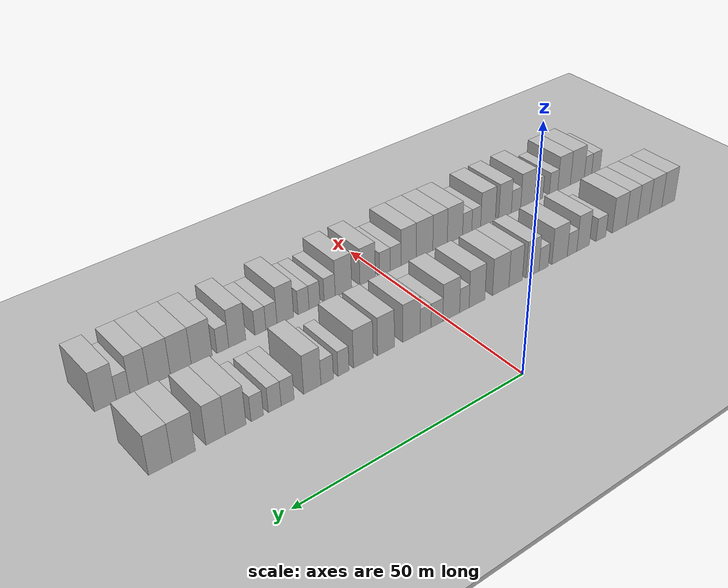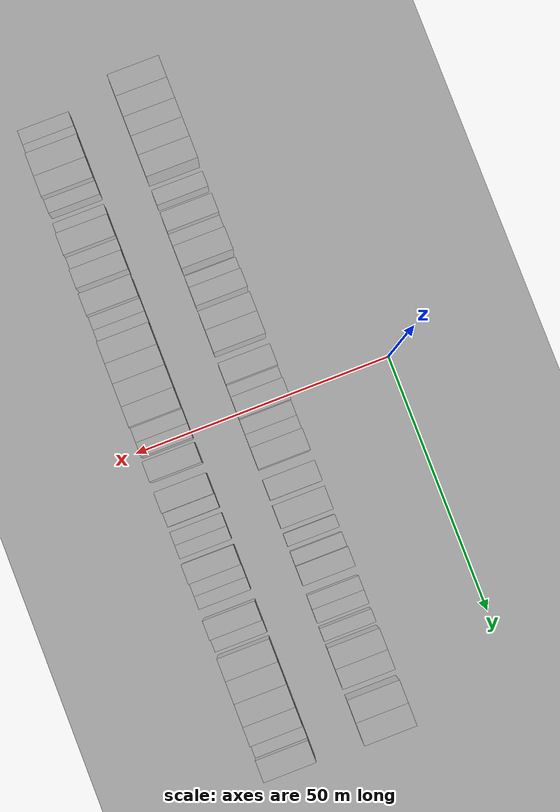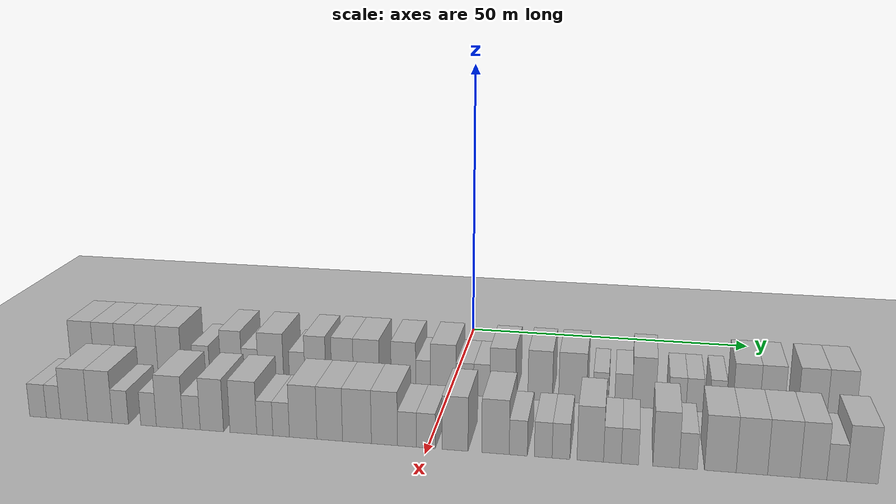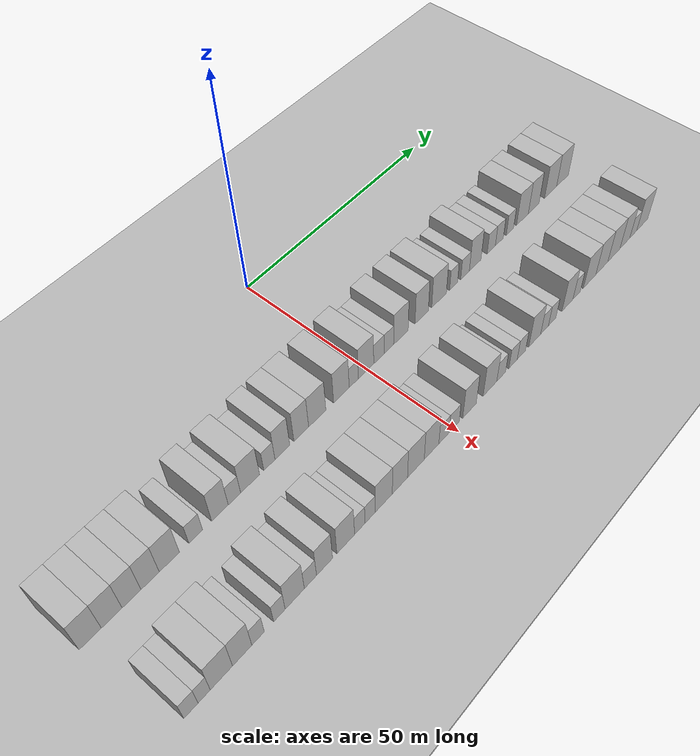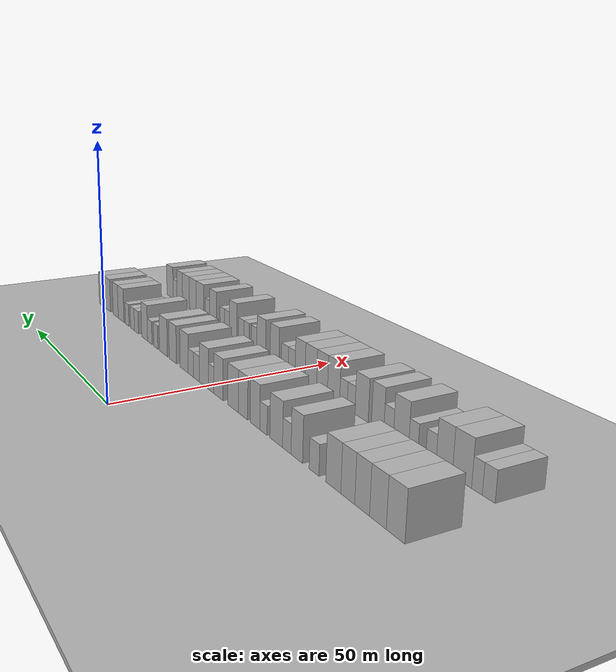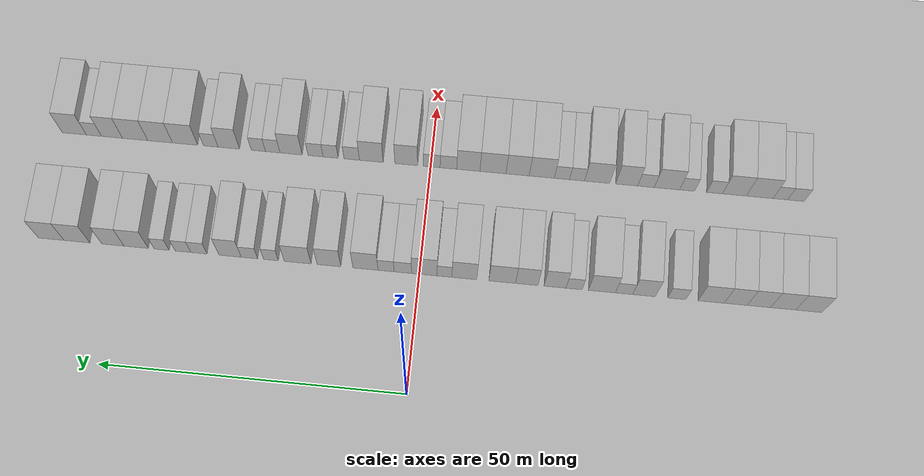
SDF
<sdf version="1.6">
 <world name="default">
  <include><name>ground_plane_1</name><uri>model://HANNAS_ground_plane</uri></include>
  <include>
   <name>ground_plane_2</name>
   <uri>model://HANNAS_ground_plane</uri>
   <pose>100 0 0  0 0 0</pose>
  </include>
  <model name="building_34">
   <static>1</static>
   <pose>25.0000 -63.6120 0 0.000000 0.000000 0.000000</pose>
   <link name="link">
    <pose>0 0 4.50 0 0 0</pose>
    <collision name="collision"><geometry><box><size>10.0000 4.2760 9.0000</size></box></geometry></collision>
    <visual name="visual">
     <cast_shadows>0</cast_shadows>
     <geometry><box><size>10.0000 4.2760 9.0000</size></box></geometry>
     <material>
      <script>
       <uri>model://HANNAS_wall/materials/scripts</uri>
       <uri>model://HANNAS_wall/materials/textures</uri>
       <name>vrc/HANNAS_wall</name>
      </script>
     </material>
    </visual>
   </link>
  </model>
  <model name="building_35">
   <static>1</static>
   <pose>25.0000 -59.4427 0 0.000000 0.000000 0.000000</pose>
   <link name="link">
    <pose>0 0 4.50 0 0 0</pose>
    <collision name="collision"><geometry><box><size>10.0000 4.0625 9.0000</size></box></geometry></collision>
    <visual name="visual">
     <cast_shadows>0</cast_shadows>
     <geometry><box><size>10.0000 4.0625 9.0000</size></box></geometry>
     <material>
      <script>
       <uri>model://HANNAS_wall/materials/scripts</uri>
       <uri>model://HANNAS_wall/materials/textures</uri>
       <name>vrc/HANNAS_wall</name>
      </script>
     </material>
    </visual>
   </link>
  </model>
  <model name="building_36">
   <static>1</static>
   <pose>25.0000 -55.5194 0 0.000000 0.000000 0.000000</pose>
   <link name="link">
    <pose>0 0 4.50 0 0 0</pose>
    <collision name="collision"><geometry><box><size>10.0000 3.7842 9.0000</size></box></geometry></collision>
    <visual name="visual">
     <cast_shadows>0</cast_shadows>
     <geometry><box><size>10.0000 3.7842 9.0000</size></box></geometry>
     <material>
      <script>
       <uri>model://HANNAS_wall/materials/scripts</uri>
       <uri>model://HANNAS_wall/materials/textures</uri>
       <name>vrc/HANNAS_wall</name>
      </script>
     </material>
    </visual>
   </link>
  </model>
  <model name="building_37">
   <static>1</static>
   <pose>25.0000 -51.7592 0 0.000000 0.000000 0.000000</pose>
   <link name="link">
    <pose>0 0 4.50 0 0 0</pose>
    <collision name="collision"><geometry><box><size>10.0000 3.7362 9.0000</size></box></geometry></collision>
    <visual name="visual">
     <cast_shadows>0</cast_shadows>
     <geometry><box><size>10.0000 3.7362 9.0000</size></box></geometry>
     <material>
      <script>
       <uri>model://HANNAS_wall/materials/scripts</uri>
       <uri>model://HANNAS_wall/materials/textures</uri>
       <name>vrc/HANNAS_wall</name>
      </script>
     </material>
    </visual>
   </link>
  </model>
  <model name="building_38">
   <static>1</static>
   <pose>25.0000 -47.7667 0 0.000000 0.000000 0.000000</pose>
   <link name="link">
    <pose>0 0 4.50 0 0 0</pose>
    <collision name="collision"><geometry><box><size>10.0000 4.2488 9.0000</size></box></geometry></collision>
    <visual name="visual">
     <cast_shadows>0</cast_shadows>
     <geometry><box><size>10.0000 4.2488 9.0000</size></box></geometry>
     <material>
      <script>
       <uri>model://HANNAS_wall/materials/scripts</uri>
       <uri>model://HANNAS_wall/materials/textures</uri>
       <name>vrc/HANNAS_wall</name>
      </script>
     </material>
    </visual>
   </link>
  </model>
  <model name="building_39">
   <static>1</static>
   <pose>25.0000 -42.1554 0 0.000000 0.000000 0.000000</pose>
   <link name="link">
    <pose>0 0 3.00 0 0 0</pose>
    <collision name="collision"><geometry><box><size>10.0000 2.9738 6.0000</size></box></geometry></collision>
    <visual name="visual">
     <cast_shadows>0</cast_shadows>
     <geometry><box><size>10.0000 2.9738 6.0000</size></box></geometry>
     <material>
      <script>
       <uri>model://HANNAS_wall/materials/scripts</uri>
       <uri>model://HANNAS_wall/materials/textures</uri>
       <name>vrc/HANNAS_wall</name>
      </script>
     </material>
    </visual>
   </link>
  </model>
  <model name="building_40">
   <static>1</static>
   <pose>25.0000 -36.8088 0 0.000000 0.000000 0.000000</pose>
   <link name="link">
    <pose>0 0 4.50 0 0 0</pose>
    <collision name="collision"><geometry><box><size>10.0000 3.7194 9.0000</size></box></geometry></collision>
    <visual name="visual">
     <cast_shadows>0</cast_shadows>
     <geometry><box><size>10.0000 3.7194 9.0000</size></box></geometry>
     <material>
      <script>
       <uri>model://HANNAS_wall/materials/scripts</uri>
       <uri>model://HANNAS_wall/materials/textures</uri>
       <name>vrc/HANNAS_wall</name>
      </script>
     </material>
    </visual>
   </link>
  </model>
  <model name="building_41">
   <static>1</static>
   <pose>25.0000 -33.5397 0 0.000000 0.000000 0.000000</pose>
   <link name="link">
    <pose>0 0 3.00 0 0 0</pose>
    <collision name="collision"><geometry><box><size>10.0000 2.8187 6.0000</size></box></geometry></collision>
    <visual name="visual">
     <cast_shadows>0</cast_shadows>
     <geometry><box><size>10.0000 2.8187 6.0000</size></box></geometry>
     <material>
      <script>
       <uri>model://HANNAS_wall/materials/scripts</uri>
       <uri>model://HANNAS_wall/materials/textures</uri>
       <name>vrc/HANNAS_wall</name>
      </script>
     </material>
    </visual>
   </link>
  </model>
  <model name="building_42">
   <static>1</static>
   <pose>25.0000 -29.9237 0 0.000000 0.000000 0.000000</pose>
   <link name="link">
    <pose>0 0 4.50 0 0 0</pose>
    <collision name="collision"><geometry><box><size>10.0000 4.4133 9.0000</size></box></geometry></collision>
    <visual name="visual">
     <cast_shadows>0</cast_shadows>
     <geometry><box><size>10.0000 4.4133 9.0000</size></box></geometry>
     <material>
      <script>
       <uri>model://HANNAS_wall/materials/scripts</uri>
       <uri>model://HANNAS_wall/materials/textures</uri>
       <name>vrc/HANNAS_wall</name>
      </script>
     </material>
    </visual>
   </link>
  </model>
  <model name="building_43">
   <static>1</static>
   <pose>25.0000 -25.3851 0 0.000000 0.000000 0.000000</pose>
   <link name="link">
    <pose>0 0 3.00 0 0 0</pose>
    <collision name="collision"><geometry><box><size>10.0000 2.6640 6.0000</size></box></geometry></collision>
    <visual name="visual">
     <cast_shadows>0</cast_shadows>
     <geometry><box><size>10.0000 2.6640 6.0000</size></box></geometry>
     <material>
      <script>
       <uri>model://HANNAS_wall/materials/scripts</uri>
       <uri>model://HANNAS_wall/materials/textures</uri>
       <name>vrc/HANNAS_wall</name>
      </script>
     </material>
    </visual>
   </link>
  </model>
  <model name="building_44">
   <static>1</static>
   <pose>25.0000 -22.2529 0 0.000000 0.000000 0.000000</pose>
   <link name="link">
    <pose>0 0 4.50 0 0 0</pose>
    <collision name="collision"><geometry><box><size>10.0000 3.6002 9.0000</size></box></geometry></collision>
    <visual name="visual">
     <cast_shadows>0</cast_shadows>
     <geometry><box><size>10.0000 3.6002 9.0000</size></box></geometry>
     <material>
      <script>
       <uri>model://HANNAS_wall/materials/scripts</uri>
       <uri>model://HANNAS_wall/materials/textures</uri>
       <name>vrc/HANNAS_wall</name>
      </script>
     </material>
    </visual>
   </link>
  </model>
  <model name="building_45">
   <static>1</static>
   <pose>25.0000 -17.6138 0 0.000000 0.000000 0.000000</pose>
   <link name="link">
    <pose>0 0 4.50 0 0 0</pose>
    <collision name="collision"><geometry><box><size>10.0000 3.6782 9.0000</size></box></geometry></collision>
    <visual name="visual">
     <cast_shadows>0</cast_shadows>
     <geometry><box><size>10.0000 3.6782 9.0000</size></box></geometry>
     <material>
      <script>
       <uri>model://HANNAS_wall/materials/scripts</uri>
       <uri>model://HANNAS_wall/materials/textures</uri>
       <name>vrc/HANNAS_wall</name>
      </script>
     </material>
    </visual>
   </link>
  </model>
  <model name="building_46">
   <static>1</static>
   <pose>25.0000 -13.5874 0 0.000000 0.000000 0.000000</pose>
   <link name="link">
    <pose>0 0 4.50 0 0 0</pose>
    <collision name="collision"><geometry><box><size>10.0000 4.3746 9.0000</size></box></geometry></collision>
    <visual name="visual">
     <cast_shadows>0</cast_shadows>
     <geometry><box><size>10.0000 4.3746 9.0000</size></box></geometry>
     <material>
      <script>
       <uri>model://HANNAS_wall/materials/scripts</uri>
       <uri>model://HANNAS_wall/materials/textures</uri>
       <name>vrc/HANNAS_wall</name>
      </script>
     </material>
    </visual>
   </link>
  </model>
  <model name="building_47">
   <static>1</static>
   <pose>25.0000 -7.3509 0 0.000000 0.000000 0.000000</pose>
   <link name="link">
    <pose>0 0 4.50 0 0 0</pose>
    <collision name="collision"><geometry><box><size>10.0000 4.0982 9.0000</size></box></geometry></collision>
    <visual name="visual">
     <cast_shadows>0</cast_shadows>
     <geometry><box><size>10.0000 4.0982 9.0000</size></box></geometry>
     <material>
      <script>
       <uri>model://HANNAS_wall/materials/scripts</uri>
       <uri>model://HANNAS_wall/materials/textures</uri>
       <name>vrc/HANNAS_wall</name>
      </script>
     </material>
    </visual>
   </link>
  </model>
  <model name="building_48">
   <static>1</static>
   <pose>25.0000 -4.0877 0 0.000000 0.000000 0.000000</pose>
   <link name="link">
    <pose>0 0 3.00 0 0 0</pose>
    <collision name="collision"><geometry><box><size>10.0000 2.4283 6.0000</size></box></geometry></collision>
    <visual name="visual">
     <cast_shadows>0</cast_shadows>
     <geometry><box><size>10.0000 2.4283 6.0000</size></box></geometry>
     <material>
      <script>
       <uri>model://HANNAS_wall/materials/scripts</uri>
       <uri>model://HANNAS_wall/materials/textures</uri>
       <name>vrc/HANNAS_wall</name>
      </script>
     </material>
    </visual>
   </link>
  </model>
  <model name="building_49">
   <static>1</static>
   <pose>25.0000 -0.7692 0 0.000000 0.000000 0.000000</pose>
   <link name="link">
    <pose>0 0 4.50 0 0 0</pose>
    <collision name="collision"><geometry><box><size>10.0000 4.2088 9.0000</size></box></geometry></collision>
    <visual name="visual">
     <cast_shadows>0</cast_shadows>
     <geometry><box><size>10.0000 4.2088 9.0000</size></box></geometry>
     <material>
      <script>
       <uri>model://HANNAS_wall/materials/scripts</uri>
       <uri>model://HANNAS_wall/materials/textures</uri>
       <name>vrc/HANNAS_wall</name>
      </script>
     </material>
    </visual>
   </link>
  </model>
  <model name="building_50">
   <static>1</static>
   <pose>25.0000 2.7833 0 0.000000 0.000000 0.000000</pose>
   <link name="link">
    <pose>0 0 3.00 0 0 0</pose>
    <collision name="collision"><geometry><box><size>10.0000 2.8960 6.0000</size></box></geometry></collision>
    <visual name="visual">
     <cast_shadows>0</cast_shadows>
     <geometry><box><size>10.0000 2.8960 6.0000</size></box></geometry>
     <material>
      <script>
       <uri>model://HANNAS_wall/materials/scripts</uri>
       <uri>model://HANNAS_wall/materials/textures</uri>
       <name>vrc/HANNAS_wall</name>
      </script>
     </material>
    </visual>
   </link>
  </model>
  <model name="building_51">
   <static>1</static>
   <pose>25.0000 5.5601 0 0.000000 0.000000 0.000000</pose>
   <link name="link">
    <pose>0 0 3.00 0 0 0</pose>
    <collision name="collision"><geometry><box><size>10.0000 2.6575 6.0000</size></box></geometry></collision>
    <visual name="visual">
     <cast_shadows>0</cast_shadows>
     <geometry><box><size>10.0000 2.6575 6.0000</size></box></geometry>
     <material>
      <script>
       <uri>model://HANNAS_wall/materials/scripts</uri>
       <uri>model://HANNAS_wall/materials/textures</uri>
       <name>vrc/HANNAS_wall</name>
      </script>
     </material>
    </visual>
   </link>
  </model>
  <model name="building_52">
   <static>1</static>
   <pose>25.0000 8.9630 0 0.000000 0.000000 0.000000</pose>
   <link name="link">
    <pose>0 0 4.50 0 0 0</pose>
    <collision name="collision"><geometry><box><size>10.0000 4.1483 9.0000</size></box></geometry></collision>
    <visual name="visual">
     <cast_shadows>0</cast_shadows>
     <geometry><box><size>10.0000 4.1483 9.0000</size></box></geometry>
     <material>
      <script>
       <uri>model://HANNAS_wall/materials/scripts</uri>
       <uri>model://HANNAS_wall/materials/textures</uri>
       <name>vrc/HANNAS_wall</name>
      </script>
     </material>
    </visual>
   </link>
  </model>
  <model name="building_53">
   <static>1</static>
   <pose>25.0000 15.0030 0 0.000000 0.000000 0.000000</pose>
   <link name="link">
    <pose>0 0 4.50 0 0 0</pose>
    <collision name="collision"><geometry><box><size>10.0000 3.9316 9.0000</size></box></geometry></collision>
    <visual name="visual">
     <cast_shadows>0</cast_shadows>
     <geometry><box><size>10.0000 3.9316 9.0000</size></box></geometry>
     <material>
      <script>
       <uri>model://HANNAS_wall/materials/scripts</uri>
       <uri>model://HANNAS_wall/materials/textures</uri>
       <name>vrc/HANNAS_wall</name>
      </script>
     </material>
    </visual>
   </link>
  </model>
  <model name="building_54">
   <static>1</static>
   <pose>25.0000 20.1888 0 0.000000 0.000000 0.000000</pose>
   <link name="link">
    <pose>0 0 4.50 0 0 0</pose>
    <collision name="collision"><geometry><box><size>10.0000 4.4401 9.0000</size></box></geometry></collision>
    <visual name="visual">
     <cast_shadows>0</cast_shadows>
     <geometry><box><size>10.0000 4.4401 9.0000</size></box></geometry>
     <material>
      <script>
       <uri>model://HANNAS_wall/materials/scripts</uri>
       <uri>model://HANNAS_wall/materials/textures</uri>
       <name>vrc/HANNAS_wall</name>
      </script>
     </material>
    </visual>
   </link>
  </model>
  <model name="building_55">
   <static>1</static>
   <pose>25.0000 24.6258 0 0.000000 0.000000 0.000000</pose>
   <link name="link">
    <pose>0 0 3.00 0 0 0</pose>
    <collision name="collision"><geometry><box><size>10.0000 2.4338 6.0000</size></box></geometry></collision>
    <visual name="visual">
     <cast_shadows>0</cast_shadows>
     <geometry><box><size>10.0000 2.4338 6.0000</size></box></geometry>
     <material>
      <script>
       <uri>model://HANNAS_wall/materials/scripts</uri>
       <uri>model://HANNAS_wall/materials/textures</uri>
       <name>vrc/HANNAS_wall</name>
      </script>
     </material>
    </visual>
   </link>
  </model>
  <model name="building_56">
   <static>1</static>
   <pose>25.0000 28.2052 0 0.000000 0.000000 0.000000</pose>
   <link name="link">
    <pose>0 0 3.00 0 0 0</pose>
    <collision name="collision"><geometry><box><size>10.0000 2.7251 6.0000</size></box></geometry></collision>
    <visual name="visual">
     <cast_shadows>0</cast_shadows>
     <geometry><box><size>10.0000 2.7251 6.0000</size></box></geometry>
     <material>
      <script>
       <uri>model://HANNAS_wall/materials/scripts</uri>
       <uri>model://HANNAS_wall/materials/textures</uri>
       <name>vrc/HANNAS_wall</name>
      </script>
     </material>
    </visual>
   </link>
  </model>
  <model name="building_57">
   <static>1</static>
   <pose>25.0000 31.4204 0 0.000000 0.000000 0.000000</pose>
   <link name="link">
    <pose>0 0 4.50 0 0 0</pose>
    <collision name="collision"><geometry><box><size>10.0000 3.7054 9.0000</size></box></geometry></collision>
    <visual name="visual">
     <cast_shadows>0</cast_shadows>
     <geometry><box><size>10.0000 3.7054 9.0000</size></box></geometry>
     <material>
      <script>
       <uri>model://HANNAS_wall/materials/scripts</uri>
       <uri>model://HANNAS_wall/materials/textures</uri>
       <name>vrc/HANNAS_wall</name>
      </script>
     </material>
    </visual>
   </link>
  </model>
  <model name="building_58">
   <static>1</static>
   <pose>25.0000 36.6185 0 0.000000 0.000000 0.000000</pose>
   <link name="link">
    <pose>0 0 3.00 0 0 0</pose>
    <collision name="collision"><geometry><box><size>10.0000 2.6908 6.0000</size></box></geometry></collision>
    <visual name="visual">
     <cast_shadows>0</cast_shadows>
     <geometry><box><size>10.0000 2.6908 6.0000</size></box></geometry>
     <material>
      <script>
       <uri>model://HANNAS_wall/materials/scripts</uri>
       <uri>model://HANNAS_wall/materials/textures</uri>
       <name>vrc/HANNAS_wall</name>
      </script>
     </material>
    </visual>
   </link>
  </model>
  <model name="building_59">
   <static>1</static>
   <pose>25.0000 39.2777 0 0.000000 0.000000 0.000000</pose>
   <link name="link">
    <pose>0 0 3.00 0 0 0</pose>
    <collision name="collision"><geometry><box><size>10.0000 2.6276 6.0000</size></box></geometry></collision>
    <visual name="visual">
     <cast_shadows>0</cast_shadows>
     <geometry><box><size>10.0000 2.6276 6.0000</size></box></geometry>
     <material>
      <script>
       <uri>model://HANNAS_wall/materials/scripts</uri>
       <uri>model://HANNAS_wall/materials/textures</uri>
       <name>vrc/HANNAS_wall</name>
      </script>
     </material>
    </visual>
   </link>
  </model>
  <model name="building_60">
   <static>1</static>
   <pose>25.0000 42.8340 0 0.000000 0.000000 0.000000</pose>
   <link name="link">
    <pose>0 0 3.00 0 0 0</pose>
    <collision name="collision"><geometry><box><size>10.0000 2.4851 6.0000</size></box></geometry></collision>
    <visual name="visual">
     <cast_shadows>0</cast_shadows>
     <geometry><box><size>10.0000 2.4851 6.0000</size></box></geometry>
     <material>
      <script>
       <uri>model://HANNAS_wall/materials/scripts</uri>
       <uri>model://HANNAS_wall/materials/textures</uri>
       <name>vrc/HANNAS_wall</name>
      </script>
     </material>
    </visual>
   </link>
  </model>
  <model name="building_61">
   <static>1</static>
   <pose>25.0000 47.1062 0 0.000000 0.000000 0.000000</pose>
   <link name="link">
    <pose>0 0 4.50 0 0 0</pose>
    <collision name="collision"><geometry><box><size>10.0000 4.0592 9.0000</size></box></geometry></collision>
    <visual name="visual">
     <cast_shadows>0</cast_shadows>
     <geometry><box><size>10.0000 4.0592 9.0000</size></box></geometry>
     <material>
      <script>
       <uri>model://HANNAS_wall/materials/scripts</uri>
       <uri>model://HANNAS_wall/materials/textures</uri>
       <name>vrc/HANNAS_wall</name>
      </script>
     </material>
    </visual>
   </link>
  </model>
  <model name="building_62">
   <static>1</static>
   <pose>25.0000 51.0010 0 0.000000 0.000000 0.000000</pose>
   <link name="link">
    <pose>0 0 4.50 0 0 0</pose>
    <collision name="collision"><geometry><box><size>10.0000 3.7304 9.0000</size></box></geometry></collision>
    <visual name="visual">
     <cast_shadows>0</cast_shadows>
     <geometry><box><size>10.0000 3.7304 9.0000</size></box></geometry>
     <material>
      <script>
       <uri>model://HANNAS_wall/materials/scripts</uri>
       <uri>model://HANNAS_wall/materials/textures</uri>
       <name>vrc/HANNAS_wall</name>
      </script>
     </material>
    </visual>
   </link>
  </model>
  <model name="building_63">
   <static>1</static>
   <pose>25.0000 57.0351 0 0.000000 0.000000 0.000000</pose>
   <link name="link">
    <pose>0 0 4.50 0 0 0</pose>
    <collision name="collision"><geometry><box><size>10.0000 4.3378 9.0000</size></box></geometry></collision>
    <visual name="visual">
     <cast_shadows>0</cast_shadows>
     <geometry><box><size>10.0000 4.3378 9.0000</size></box></geometry>
     <material>
      <script>
       <uri>model://HANNAS_wall/materials/scripts</uri>
       <uri>model://HANNAS_wall/materials/textures</uri>
       <name>vrc/HANNAS_wall</name>
      </script>
     </material>
    </visual>
   </link>
  </model>
  <model name="building_64">
   <static>1</static>
   <pose>25.0000 61.3493 0 0.000000 0.000000 0.000000</pose>
   <link name="link">
    <pose>0 0 4.50 0 0 0</pose>
    <collision name="collision"><geometry><box><size>10.0000 4.2907 9.0000</size></box></geometry></collision>
    <visual name="visual">
     <cast_shadows>0</cast_shadows>
     <geometry><box><size>10.0000 4.2907 9.0000</size></box></geometry>
     <material>
      <script>
       <uri>model://HANNAS_wall/materials/scripts</uri>
       <uri>model://HANNAS_wall/materials/textures</uri>
       <name>vrc/HANNAS_wall</name>
      </script>
     </material>
    </visual>
   </link>
  </model>
  <model name="building_132">
   <static>1</static>
   <pose>44.0000 -61.3484 0 0.000000 0.000000 0.000000</pose>
   <link name="link">
    <pose>0 0 3.00 0 0 0</pose>
    <collision name="collision"><geometry><box><size>10.0000 2.7875 6.0000</size></box></geometry></collision>
    <visual name="visual">
     <cast_shadows>0</cast_shadows>
     <geometry><box><size>10.0000 2.7875 6.0000</size></box></geometry>
     <material>
      <script>
       <uri>model://HANNAS_wall/materials/scripts</uri>
       <uri>model://HANNAS_wall/materials/textures</uri>
       <name>vrc/HANNAS_wall</name>
      </script>
     </material>
    </visual>
   </link>
  </model>
  <model name="building_133">
   <static>1</static>
   <pose>44.0000 -58.7540 0 0.000000 0.000000 0.000000</pose>
   <link name="link">
    <pose>0 0 3.00 0 0 0</pose>
    <collision name="collision"><geometry><box><size>10.0000 2.4012 6.0000</size></box></geometry></collision>
    <visual name="visual">
     <cast_shadows>0</cast_shadows>
     <geometry><box><size>10.0000 2.4012 6.0000</size></box></geometry>
     <material>
      <script>
       <uri>model://HANNAS_wall/materials/scripts</uri>
       <uri>model://HANNAS_wall/materials/textures</uri>
       <name>vrc/HANNAS_wall</name>
      </script>
     </material>
    </visual>
   </link>
  </model>
  <model name="building_134">
   <static>1</static>
   <pose>44.0000 -55.3086 0 0.000000 0.000000 0.000000</pose>
   <link name="link">
    <pose>0 0 4.50 0 0 0</pose>
    <collision name="collision"><geometry><box><size>10.0000 4.4896 9.0000</size></box></geometry></collision>
    <visual name="visual">
     <cast_shadows>0</cast_shadows>
     <geometry><box><size>10.0000 4.4896 9.0000</size></box></geometry>
     <material>
      <script>
       <uri>model://HANNAS_wall/materials/scripts</uri>
       <uri>model://HANNAS_wall/materials/textures</uri>
       <name>vrc/HANNAS_wall</name>
      </script>
     </material>
    </visual>
   </link>
  </model>
  <model name="building_135">
   <static>1</static>
   <pose>44.0000 -51.0622 0 0.000000 0.000000 0.000000</pose>
   <link name="link">
    <pose>0 0 4.50 0 0 0</pose>
    <collision name="collision"><geometry><box><size>10.0000 4.0033 9.0000</size></box></geometry></collision>
    <visual name="visual">
     <cast_shadows>0</cast_shadows>
     <geometry><box><size>10.0000 4.0033 9.0000</size></box></geometry>
     <material>
      <script>
       <uri>model://HANNAS_wall/materials/scripts</uri>
       <uri>model://HANNAS_wall/materials/textures</uri>
       <name>vrc/HANNAS_wall</name>
      </script>
     </material>
    </visual>
   </link>
  </model>
  <model name="building_136">
   <static>1</static>
   <pose>44.0000 -47.7368 0 0.000000 0.000000 0.000000</pose>
   <link name="link">
    <pose>0 0 3.00 0 0 0</pose>
    <collision name="collision"><geometry><box><size>10.0000 2.6475 6.0000</size></box></geometry></collision>
    <visual name="visual">
     <cast_shadows>0</cast_shadows>
     <geometry><box><size>10.0000 2.6475 6.0000</size></box></geometry>
     <material>
      <script>
       <uri>model://HANNAS_wall/materials/scripts</uri>
       <uri>model://HANNAS_wall/materials/textures</uri>
       <name>vrc/HANNAS_wall</name>
      </script>
     </material>
    </visual>
   </link>
  </model>
  <model name="building_137">
   <static>1</static>
   <pose>44.0000 -43.1547 0 0.000000 0.000000 0.000000</pose>
   <link name="link">
    <pose>0 0 3.00 0 0 0</pose>
    <collision name="collision"><geometry><box><size>10.0000 2.5165 6.0000</size></box></geometry></collision>
    <visual name="visual">
     <cast_shadows>0</cast_shadows>
     <geometry><box><size>10.0000 2.5165 6.0000</size></box></geometry>
     <material>
      <script>
       <uri>model://HANNAS_wall/materials/scripts</uri>
       <uri>model://HANNAS_wall/materials/textures</uri>
       <name>vrc/HANNAS_wall</name>
      </script>
     </material>
    </visual>
   </link>
  </model>
  <model name="building_138">
   <static>1</static>
   <pose>44.0000 -39.7654 0 0.000000 0.000000 0.000000</pose>
   <link name="link">
    <pose>0 0 4.50 0 0 0</pose>
    <collision name="collision"><geometry><box><size>10.0000 4.2621 9.0000</size></box></geometry></collision>
    <visual name="visual">
     <cast_shadows>0</cast_shadows>
     <geometry><box><size>10.0000 4.2621 9.0000</size></box></geometry>
     <material>
      <script>
       <uri>model://HANNAS_wall/materials/scripts</uri>
       <uri>model://HANNAS_wall/materials/textures</uri>
       <name>vrc/HANNAS_wall</name>
      </script>
     </material>
    </visual>
   </link>
  </model>
  <model name="building_139">
   <static>1</static>
   <pose>44.0000 -36.2450 0 0.000000 0.000000 0.000000</pose>
   <link name="link">
    <pose>0 0 3.00 0 0 0</pose>
    <collision name="collision"><geometry><box><size>10.0000 2.7787 6.0000</size></box></geometry></collision>
    <visual name="visual">
     <cast_shadows>0</cast_shadows>
     <geometry><box><size>10.0000 2.7787 6.0000</size></box></geometry>
     <material>
      <script>
       <uri>model://HANNAS_wall/materials/scripts</uri>
       <uri>model://HANNAS_wall/materials/textures</uri>
       <name>vrc/HANNAS_wall</name>
      </script>
     </material>
    </visual>
   </link>
  </model>
  <model name="building_140">
   <static>1</static>
   <pose>44.0000 -33.0018 0 0.000000 0.000000 0.000000</pose>
   <link name="link">
    <pose>0 0 4.50 0 0 0</pose>
    <collision name="collision"><geometry><box><size>10.0000 3.7077 9.0000</size></box></geometry></collision>
    <visual name="visual">
     <cast_shadows>0</cast_shadows>
     <geometry><box><size>10.0000 3.7077 9.0000</size></box></geometry>
     <material>
      <script>
       <uri>model://HANNAS_wall/materials/scripts</uri>
       <uri>model://HANNAS_wall/materials/textures</uri>
       <name>vrc/HANNAS_wall</name>
      </script>
     </material>
    </visual>
   </link>
  </model>
  <model name="building_141">
   <static>1</static>
   <pose>44.0000 -28.0355 0 0.000000 0.000000 0.000000</pose>
   <link name="link">
    <pose>0 0 4.50 0 0 0</pose>
    <collision name="collision"><geometry><box><size>10.0000 4.2249 9.0000</size></box></geometry></collision>
    <visual name="visual">
     <cast_shadows>0</cast_shadows>
     <geometry><box><size>10.0000 4.2249 9.0000</size></box></geometry>
     <material>
      <script>
       <uri>model://HANNAS_wall/materials/scripts</uri>
       <uri>model://HANNAS_wall/materials/textures</uri>
       <name>vrc/HANNAS_wall</name>
      </script>
     </material>
    </visual>
   </link>
  </model>
  <model name="building_142">
   <static>1</static>
   <pose>44.0000 -24.6611 0 0.000000 0.000000 0.000000</pose>
   <link name="link">
    <pose>0 0 3.00 0 0 0</pose>
    <collision name="collision"><geometry><box><size>10.0000 2.5238 6.0000</size></box></geometry></collision>
    <visual name="visual">
     <cast_shadows>0</cast_shadows>
     <geometry><box><size>10.0000 2.5238 6.0000</size></box></geometry>
     <material>
      <script>
       <uri>model://HANNAS_wall/materials/scripts</uri>
       <uri>model://HANNAS_wall/materials/textures</uri>
       <name>vrc/HANNAS_wall</name>
      </script>
     </material>
    </visual>
   </link>
  </model>
  <model name="building_143">
   <static>1</static>
   <pose>44.0000 -22.1176 0 0.000000 0.000000 0.000000</pose>
   <link name="link">
    <pose>0 0 3.00 0 0 0</pose>
    <collision name="collision"><geometry><box><size>10.0000 2.5633 6.0000</size></box></geometry></collision>
    <visual name="visual">
     <cast_shadows>0</cast_shadows>
     <geometry><box><size>10.0000 2.5633 6.0000</size></box></geometry>
     <material>
      <script>
       <uri>model://HANNAS_wall/materials/scripts</uri>
       <uri>model://HANNAS_wall/materials/textures</uri>
       <name>vrc/HANNAS_wall</name>
      </script>
     </material>
    </visual>
   </link>
  </model>
  <model name="building_144">
   <static>1</static>
   <pose>44.0000 -18.7062 0 0.000000 0.000000 0.000000</pose>
   <link name="link">
    <pose>0 0 4.50 0 0 0</pose>
    <collision name="collision"><geometry><box><size>10.0000 4.2595 9.0000</size></box></geometry></collision>
    <visual name="visual">
     <cast_shadows>0</cast_shadows>
     <geometry><box><size>10.0000 4.2595 9.0000</size></box></geometry>
     <material>
      <script>
       <uri>model://HANNAS_wall/materials/scripts</uri>
       <uri>model://HANNAS_wall/materials/textures</uri>
       <name>vrc/HANNAS_wall</name>
      </script>
     </material>
    </visual>
   </link>
  </model>
  <model name="building_145">
   <static>1</static>
   <pose>44.0000 -14.6168 0 0.000000 0.000000 0.000000</pose>
   <link name="link">
    <pose>0 0 4.50 0 0 0</pose>
    <collision name="collision"><geometry><box><size>10.0000 3.9193 9.0000</size></box></geometry></collision>
    <visual name="visual">
     <cast_shadows>0</cast_shadows>
     <geometry><box><size>10.0000 3.9193 9.0000</size></box></geometry>
     <material>
      <script>
       <uri>model://HANNAS_wall/materials/scripts</uri>
       <uri>model://HANNAS_wall/materials/textures</uri>
       <name>vrc/HANNAS_wall</name>
      </script>
     </material>
    </visual>
   </link>
  </model>
  <model name="building_146">
   <static>1</static>
   <pose>44.0000 -10.4602 0 0.000000 0.000000 0.000000</pose>
   <link name="link">
    <pose>0 0 4.50 0 0 0</pose>
    <collision name="collision"><geometry><box><size>10.0000 4.3938 9.0000</size></box></geometry></collision>
    <visual name="visual">
     <cast_shadows>0</cast_shadows>
     <geometry><box><size>10.0000 4.3938 9.0000</size></box></geometry>
     <material>
      <script>
       <uri>model://HANNAS_wall/materials/scripts</uri>
       <uri>model://HANNAS_wall/materials/textures</uri>
       <name>vrc/HANNAS_wall</name>
      </script>
     </material>
    </visual>
   </link>
  </model>
  <model name="building_147">
   <static>1</static>
   <pose>44.0000 -6.2945 0 0.000000 0.000000 0.000000</pose>
   <link name="link">
    <pose>0 0 4.50 0 0 0</pose>
    <collision name="collision"><geometry><box><size>10.0000 3.9376 9.0000</size></box></geometry></collision>
    <visual name="visual">
     <cast_shadows>0</cast_shadows>
     <geometry><box><size>10.0000 3.9376 9.0000</size></box></geometry>
     <material>
      <script>
       <uri>model://HANNAS_wall/materials/scripts</uri>
       <uri>model://HANNAS_wall/materials/textures</uri>
       <name>vrc/HANNAS_wall</name>
      </script>
     </material>
    </visual>
   </link>
  </model>
  <model name="building_148">
   <static>1</static>
   <pose>44.0000 -2.9204 0 0.000000 0.000000 0.000000</pose>
   <link name="link">
    <pose>0 0 3.00 0 0 0</pose>
    <collision name="collision"><geometry><box><size>10.0000 2.8107 6.0000</size></box></geometry></collision>
    <visual name="visual">
     <cast_shadows>0</cast_shadows>
     <geometry><box><size>10.0000 2.8107 6.0000</size></box></geometry>
     <material>
      <script>
       <uri>model://HANNAS_wall/materials/scripts</uri>
       <uri>model://HANNAS_wall/materials/textures</uri>
       <name>vrc/HANNAS_wall</name>
      </script>
     </material>
    </visual>
   </link>
  </model>
  <model name="building_149">
   <static>1</static>
   <pose>44.0000 -0.1097 0 0.000000 0.000000 0.000000</pose>
   <link name="link">
    <pose>0 0 3.00 0 0 0</pose>
    <collision name="collision"><geometry><box><size>10.0000 2.8105 6.0000</size></box></geometry></collision>
    <visual name="visual">
     <cast_shadows>0</cast_shadows>
     <geometry><box><size>10.0000 2.8105 6.0000</size></box></geometry>
     <material>
      <script>
       <uri>model://HANNAS_wall/materials/scripts</uri>
       <uri>model://HANNAS_wall/materials/textures</uri>
       <name>vrc/HANNAS_wall</name>
      </script>
     </material>
    </visual>
   </link>
  </model>
  <model name="building_150">
   <static>1</static>
   <pose>44.0000 4.2238 0 0.000000 0.000000 0.000000</pose>
   <link name="link">
    <pose>0 0 4.50 0 0 0</pose>
    <collision name="collision"><geometry><box><size>10.0000 3.8566 9.0000</size></box></geometry></collision>
    <visual name="visual">
     <cast_shadows>0</cast_shadows>
     <geometry><box><size>10.0000 3.8566 9.0000</size></box></geometry>
     <material>
      <script>
       <uri>model://HANNAS_wall/materials/scripts</uri>
       <uri>model://HANNAS_wall/materials/textures</uri>
       <name>vrc/HANNAS_wall</name>
      </script>
     </material>
    </visual>
   </link>
  </model>
  <model name="building_151">
   <static>1</static>
   <pose>44.0000 10.1612 0 0.000000 0.000000 0.000000</pose>
   <link name="link">
    <pose>0 0 4.50 0 0 0</pose>
    <collision name="collision"><geometry><box><size>10.0000 4.0180 9.0000</size></box></geometry></collision>
    <visual name="visual">
     <cast_shadows>0</cast_shadows>
     <geometry><box><size>10.0000 4.0180 9.0000</size></box></geometry>
     <material>
      <script>
       <uri>model://HANNAS_wall/materials/scripts</uri>
       <uri>model://HANNAS_wall/materials/textures</uri>
       <name>vrc/HANNAS_wall</name>
      </script>
     </material>
    </visual>
   </link>
  </model>
  <model name="building_152">
   <static>1</static>
   <pose>44.0000 13.4859 0 0.000000 0.000000 0.000000</pose>
   <link name="link">
    <pose>0 0 3.00 0 0 0</pose>
    <collision name="collision"><geometry><box><size>10.0000 2.6315 6.0000</size></box></geometry></collision>
    <visual name="visual">
     <cast_shadows>0</cast_shadows>
     <geometry><box><size>10.0000 2.6315 6.0000</size></box></geometry>
     <material>
      <script>
       <uri>model://HANNAS_wall/materials/scripts</uri>
       <uri>model://HANNAS_wall/materials/textures</uri>
       <name>vrc/HANNAS_wall</name>
      </script>
     </material>
    </visual>
   </link>
  </model>
  <model name="building_153">
   <static>1</static>
   <pose>44.0000 17.0871 0 0.000000 0.000000 0.000000</pose>
   <link name="link">
    <pose>0 0 3.00 0 0 0</pose>
    <collision name="collision"><geometry><box><size>10.0000 2.5710 6.0000</size></box></geometry></collision>
    <visual name="visual">
     <cast_shadows>0</cast_shadows>
     <geometry><box><size>10.0000 2.5710 6.0000</size></box></geometry>
     <material>
      <script>
       <uri>model://HANNAS_wall/materials/scripts</uri>
       <uri>model://HANNAS_wall/materials/textures</uri>
       <name>vrc/HANNAS_wall</name>
      </script>
     </material>
    </visual>
   </link>
  </model>
  <model name="building_154">
   <static>1</static>
   <pose>44.0000 19.6492 0 0.000000 0.000000 0.000000</pose>
   <link name="link">
    <pose>0 0 3.00 0 0 0</pose>
    <collision name="collision"><geometry><box><size>10.0000 2.5532 6.0000</size></box></geometry></collision>
    <visual name="visual">
     <cast_shadows>0</cast_shadows>
     <geometry><box><size>10.0000 2.5532 6.0000</size></box></geometry>
     <material>
      <script>
       <uri>model://HANNAS_wall/materials/scripts</uri>
       <uri>model://HANNAS_wall/materials/textures</uri>
       <name>vrc/HANNAS_wall</name>
      </script>
     </material>
    </visual>
   </link>
  </model>
  <model name="building_155">
   <static>1</static>
   <pose>44.0000 23.8129 0 0.000000 0.000000 0.000000</pose>
   <link name="link">
    <pose>0 0 4.50 0 0 0</pose>
    <collision name="collision"><geometry><box><size>10.0000 3.7741 9.0000</size></box></geometry></collision>
    <visual name="visual">
     <cast_shadows>0</cast_shadows>
     <geometry><box><size>10.0000 3.7741 9.0000</size></box></geometry>
     <material>
      <script>
       <uri>model://HANNAS_wall/materials/scripts</uri>
       <uri>model://HANNAS_wall/materials/textures</uri>
       <name>vrc/HANNAS_wall</name>
      </script>
     </material>
    </visual>
   </link>
  </model>
  <model name="building_156">
   <static>1</static>
   <pose>44.0000 26.9471 0 0.000000 0.000000 0.000000</pose>
   <link name="link">
    <pose>0 0 3.00 0 0 0</pose>
    <collision name="collision"><geometry><box><size>10.0000 2.4944 6.0000</size></box></geometry></collision>
    <visual name="visual">
     <cast_shadows>0</cast_shadows>
     <geometry><box><size>10.0000 2.4944 6.0000</size></box></geometry>
     <material>
      <script>
       <uri>model://HANNAS_wall/materials/scripts</uri>
       <uri>model://HANNAS_wall/materials/textures</uri>
       <name>vrc/HANNAS_wall</name>
      </script>
     </material>
    </visual>
   </link>
  </model>
  <model name="building_157">
   <static>1</static>
   <pose>44.0000 29.4114 0 0.000000 0.000000 0.000000</pose>
   <link name="link">
    <pose>0 0 3.00 0 0 0</pose>
    <collision name="collision"><geometry><box><size>10.0000 2.4341 6.0000</size></box></geometry></collision>
    <visual name="visual">
     <cast_shadows>0</cast_shadows>
     <geometry><box><size>10.0000 2.4341 6.0000</size></box></geometry>
     <material>
      <script>
       <uri>model://HANNAS_wall/materials/scripts</uri>
       <uri>model://HANNAS_wall/materials/textures</uri>
       <name>vrc/HANNAS_wall</name>
      </script>
     </material>
    </visual>
   </link>
  </model>
  <model name="building_158">
   <static>1</static>
   <pose>44.0000 34.4591 0 0.000000 0.000000 0.000000</pose>
   <link name="link">
    <pose>0 0 4.50 0 0 0</pose>
    <collision name="collision"><geometry><box><size>10.0000 3.6613 9.0000</size></box></geometry></collision>
    <visual name="visual">
     <cast_shadows>0</cast_shadows>
     <geometry><box><size>10.0000 3.6613 9.0000</size></box></geometry>
     <material>
      <script>
       <uri>model://HANNAS_wall/materials/scripts</uri>
       <uri>model://HANNAS_wall/materials/textures</uri>
       <name>vrc/HANNAS_wall</name>
      </script>
     </material>
    </visual>
   </link>
  </model>
  <model name="building_159">
   <static>1</static>
   <pose>44.0000 37.5465 0 0.000000 0.000000 0.000000</pose>
   <link name="link">
    <pose>0 0 3.00 0 0 0</pose>
    <collision name="collision"><geometry><box><size>10.0000 2.5134 6.0000</size></box></geometry></collision>
    <visual name="visual">
     <cast_shadows>0</cast_shadows>
     <geometry><box><size>10.0000 2.5134 6.0000</size></box></geometry>
     <material>
      <script>
       <uri>model://HANNAS_wall/materials/scripts</uri>
       <uri>model://HANNAS_wall/materials/textures</uri>
       <name>vrc/HANNAS_wall</name>
      </script>
     </material>
    </visual>
   </link>
  </model>
  <model name="building_160">
   <static>1</static>
   <pose>44.0000 41.9660 0 0.000000 0.000000 0.000000</pose>
   <link name="link">
    <pose>0 0 4.50 0 0 0</pose>
    <collision name="collision"><geometry><box><size>10.0000 4.3256 9.0000</size></box></geometry></collision>
    <visual name="visual">
     <cast_shadows>0</cast_shadows>
     <geometry><box><size>10.0000 4.3256 9.0000</size></box></geometry>
     <material>
      <script>
       <uri>model://HANNAS_wall/materials/scripts</uri>
       <uri>model://HANNAS_wall/materials/textures</uri>
       <name>vrc/HANNAS_wall</name>
      </script>
     </material>
    </visual>
   </link>
  </model>
  <model name="building_161">
   <static>1</static>
   <pose>44.0000 46.2556 0 0.000000 0.000000 0.000000</pose>
   <link name="link">
    <pose>0 0 4.50 0 0 0</pose>
    <collision name="collision"><geometry><box><size>10.0000 4.2537 9.0000</size></box></geometry></collision>
    <visual name="visual">
     <cast_shadows>0</cast_shadows>
     <geometry><box><size>10.0000 4.2537 9.0000</size></box></geometry>
     <material>
      <script>
       <uri>model://HANNAS_wall/materials/scripts</uri>
       <uri>model://HANNAS_wall/materials/textures</uri>
       <name>vrc/HANNAS_wall</name>
      </script>
     </material>
    </visual>
   </link>
  </model>
  <model name="building_162">
   <static>1</static>
   <pose>44.0000 50.5536 0 0.000000 0.000000 0.000000</pose>
   <link name="link">
    <pose>0 0 4.50 0 0 0</pose>
    <collision name="collision"><geometry><box><size>10.0000 4.3422 9.0000</size></box></geometry></collision>
    <visual name="visual">
     <cast_shadows>0</cast_shadows>
     <geometry><box><size>10.0000 4.3422 9.0000</size></box></geometry>
     <material>
      <script>
       <uri>model://HANNAS_wall/materials/scripts</uri>
       <uri>model://HANNAS_wall/materials/textures</uri>
       <name>vrc/HANNAS_wall</name>
      </script>
     </material>
    </visual>
   </link>
  </model>
  <model name="building_163">
   <static>1</static>
   <pose>44.0000 54.5278 0 0.000000 0.000000 0.000000</pose>
   <link name="link">
    <pose>0 0 4.50 0 0 0</pose>
    <collision name="collision"><geometry><box><size>10.0000 3.6063 9.0000</size></box></geometry></collision>
    <visual name="visual">
     <cast_shadows>0</cast_shadows>
     <geometry><box><size>10.0000 3.6063 9.0000</size></box></geometry>
     <material>
      <script>
       <uri>model://HANNAS_wall/materials/scripts</uri>
       <uri>model://HANNAS_wall/materials/textures</uri>
       <name>vrc/HANNAS_wall</name>
      </script>
     </material>
    </visual>
   </link>
  </model>
  <model name="building_164">
   <static>1</static>
   <pose>44.0000 57.6297 0 0.000000 0.000000 0.000000</pose>
   <link name="link">
    <pose>0 0 3.00 0 0 0</pose>
    <collision name="collision"><geometry><box><size>10.0000 2.5974 6.0000</size></box></geometry></collision>
    <visual name="visual">
     <cast_shadows>0</cast_shadows>
     <geometry><box><size>10.0000 2.5974 6.0000</size></box></geometry>
     <material>
      <script>
       <uri>model://HANNAS_wall/materials/scripts</uri>
       <uri>model://HANNAS_wall/materials/textures</uri>
       <name>vrc/HANNAS_wall</name>
      </script>
     </material>
    </visual>
   </link>
  </model>
  <model name="building_165">
   <static>1</static>
   <pose>44.0000 61.0081 0 0.000000 0.000000 0.000000</pose>
   <link name="link">
    <pose>0 0 4.50 0 0 0</pose>
    <collision name="collision"><geometry><box><size>10.0000 4.1595 9.0000</size></box></geometry></collision>
    <visual name="visual">
     <cast_shadows>0</cast_shadows>
     <geometry><box><size>10.0000 4.1595 9.0000</size></box></geometry>
     <material>
      <script>
       <uri>model://HANNAS_wall/materials/scripts</uri>
       <uri>model://HANNAS_wall/materials/textures</uri>
       <name>vrc/HANNAS_wall</name>
      </script>
     </material>
    </visual>
   </link>
  </model>
 </world>
</sdf>
